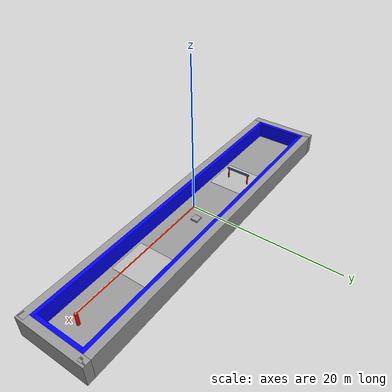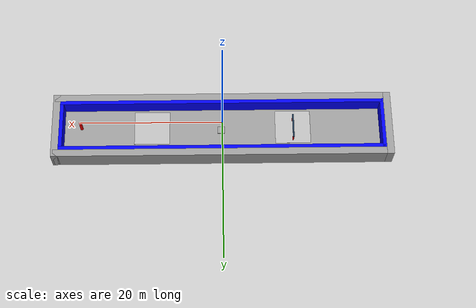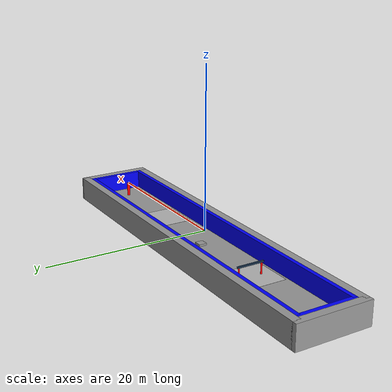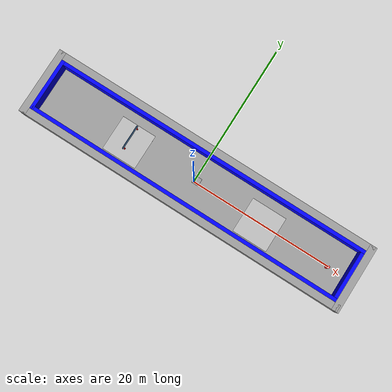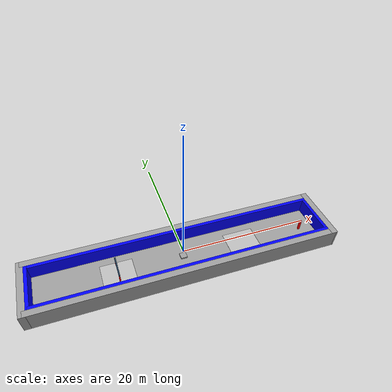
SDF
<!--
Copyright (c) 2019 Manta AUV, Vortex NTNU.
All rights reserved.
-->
<sdf version="1.5">
 <world name="empty_underwater">
  <physics name="default_physics" default="true" type="ode">
   <max_step_size>0.002</max_step_size>
   <real_time_factor>1</real_time_factor>
   <real_time_update_rate>500</real_time_update_rate>
   <ode><solver><type>quick</type><iters>50</iters><sor>0.5</sor></solver></ode>
  </physics>
  <scene>
   <ambient>0.01 0.01 0.01 1.0</ambient>
   <sky><clouds><speed>12</speed></clouds></sky>
   <shadows>1</shadows>
   <fog>
    <color>0.1 0.2 0.3 1.0</color>
    <type>linear</type>
    <density>0.001</density>
    <start>10</start>
    <end>200</end>
   </fog>
  </scene>
  <spherical_coordinates>
   <latitude_deg>56.71897669633431</latitude_deg>
   <longitude_deg>3.515625</longitude_deg>
  </spherical_coordinates>
  <include><uri>model://sun</uri></include>
  <include><name>pool</name><pose>0 0 -2 0 0 0</pose><uri>model://2018/Pool</uri></include>
  <include><name>pole</name><pose>20 0 -2.5 0 0 0</pose><uri>model://2018/Pole</uri></include>
  <include><name>test_gate</name><pose>-10 0 -2 0 0 0</pose><uri>model://2018/test_gate</uri></include>
  <include><name>vortex_logo_1</name><pose>-10 0 -2.79 0 0 0</pose><uri>model://2018/vortex_logo</uri></include>
  <include><name>vortex_logo_2</name><pose>10 0 -2.79 0 0 0</pose><uri>model://2018/vortex_logo</uri></include>
  <light type="directional" name="sun0">
   <pose>8 -21 10 0 0.8 -2.8</pose>
   <diffuse>0.8 0.8 0.8 1</diffuse>
   <specular>0.2 0.2 0.2 1</specular>
   <attenuation>
    <range>1000</range>
    <constant>0.9</constant>
    <linear>0.01</linear>
    <quadratic>0.001</quadratic>
   </attenuation>
   <direction>-0.5 0.1 -0.9</direction>
  </light>
  <light type="directional" name="sun1">
   <pose>8 -20 10 0 0.8 0</pose>
   <diffuse>0.8 0.8 0.8 1</diffuse>
   <specular>0.2 0.2 0.2 1</specular>
   <attenuation>
    <range>1000</range>
    <constant>0.9</constant>
    <linear>0.01</linear>
    <quadratic>0.001</quadratic>
   </attenuation>
   <direction>-0.5 0.1 -0.9</direction>
  </light>
  <light type="directional" name="sun2">
   <pose>8 -19 10 0 0 0</pose>
   <diffuse>0.8 0.8 0.8 1</diffuse>
   <specular>0.2 0.2 0.2 1</specular>
   <attenuation>
    <range>1000</range>
    <constant>0.9</constant>
    <linear>0.01</linear>
    <quadratic>0.001</quadratic>
   </attenuation>
   <direction>-0.5 0.1 -0.9</direction>
  </light>
  <light type="directional" name="sun3">
   <pose>8 -19 10 1.75 0 0</pose>
   <diffuse>0.8 0.8 0.8 1</diffuse>
   <specular>0.2 0.2 0.2 1</specular>
   <attenuation>
    <range>1000</range>
    <constant>0.9</constant>
    <linear>0.01</linear>
    <quadratic>0.001</quadratic>
   </attenuation>
   <direction>-0.5 0.1 -0.9</direction>
  </light>
  <light type="directional" name="sun4">
   <pose>8 -19 10 1.75 0 2.9</pose>
   <diffuse>0.8 0.8 0.8 1</diffuse>
   <specular>0.2 0.2 0.2 1</specular>
   <attenuation>
    <range>1000</range>
    <constant>0.9</constant>
    <linear>0.01</linear>
    <quadratic>0.001</quadratic>
   </attenuation>
   <direction>-0.5 0.1 -0.9</direction>
  </light>
  <plugin name="underwater_current_plugin" filename="libuuv_underwater_current_ros_plugin.so">
   <namespace>hydrodynamics</namespace>
   <constant_current>
    <topic>current_velocity</topic>
    <velocity><mean>0</mean><min>0</min><max>5</max><mu>0.0</mu><noiseAmp>0.0</noiseAmp></velocity>
    <horizontal_angle>
     <mean>0</mean>
     <min>-3.141592653589793238</min>
     <max>3.141592653589793238</max>
     <mu>0.0</mu>
     <noiseAmp>0.0</noiseAmp>
    </horizontal_angle>
    <vertical_angle>
     <mean>0</mean>
     <min>-3.141592653589793238</min>
     <max>3.141592653589793238</max>
     <mu>0.0</mu>
     <noiseAmp>0.0</noiseAmp>
    </vertical_angle>
   </constant_current>
  </plugin>
  <plugin name="sc_interface" filename="libuuv_sc_ros_interface_plugin.so"/>
 </world>
</sdf>

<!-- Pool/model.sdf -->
<sdf version='1.6'>
  <model name='Pool'>
    <link name='link_0'>
      <pose frame=''>0.166667 0.472222 0 0 -0 0</pose>
      <inertial>
        <mass>1</mass>
        <inertia>
          <ixx>0.166667</ixx>
          <ixy>0</ixy>
          <ixz>0</ixz>
          <iyy>0.166667</iyy>
          <iyz>0</iyz>
          <izz>0.166667</izz>
        </inertia>
        <pose frame=''>0 0 0 0 -0 0</pose>
      </inertial>
      <self_collide>0</self_collide>
      <kinematic>0</kinematic>
      <gravity>1</gravity>
      <visual name='visual'>
        <pose frame=''>0 0 0 0 -0 0</pose>
        <geometry>
          <box>
            <size>45 6.5 0.5</size>
          </box>
        </geometry>
        <material>
          <lighting>1</lighting>
          <script>
            <uri>file://media/materials/scripts/gazebo.material</uri>
            <name>Gazebo/Grey</name>
          </script>
          <ambient>0.3 0.3 0.3 1</ambient>
          <diffuse>0.7 0.7 0.7 1</diffuse>
          <specular>0.01 0.01 0.01 1</specular>
          <emissive>0 0 0 1</emissive>
          <shader type='vertex'>
            <normal_map>__default__</normal_map>
          </shader>
        </material>
        <cast_shadows>1</cast_shadows>
        <transparency>0</transparency>
      </visual>
      <visual name='ModelPreview_0::link_0::visual_1'>
        <pose frame=''>0 0 0 0 -0 0</pose>
        <geometry>
          <box>
            <size>1 1 1</size>
          </box>
        </geometry>
        <material>
          <lighting>1</lighting>
          <script>
            <uri>file://media/materials/scripts/gazebo.material</uri>
            <name>Gazebo/Grey</name>
          </script>
          <ambient>0.7 0.7 0.7 1</ambient>
          <diffuse>0.7 0.7 0.7 1</diffuse>
          <specular>0.7 0.7 0.7 1</specular>
          <emissive>0.7 0.7 0.7 1</emissive>
          <shader type='vertex'>
            <normal_map>__default__</normal_map>
          </shader>
        </material>
        <cast_shadows>1</cast_shadows>
        <transparency>0</transparency>
      </visual>
      <visual name='ModelPreview_0::link_0::visual_2'>
        <pose frame=''>0 0 0 0 -0 0</pose>
        <geometry>
          <box>
            <size>45 6.5 0.5</size>
          </box>
        </geometry>
        <material>
          <lighting>1</lighting>
          <script>
            <uri>file://media/materials/scripts/gazebo.material</uri>
            <name>Gazebo/Grey</name>
          </script>
          <ambient>0.7 0.7 0.7 1</ambient>
          <diffuse>0.7 0.7 0.7 1</diffuse>
          <specular>0.7 0.7 0.7 1</specular>
          <emissive>0.7 0.7 0.7 1</emissive>
          <shader type='pixel'>
            <normal_map>__default__</normal_map>
          </shader>
        </material>
        <cast_shadows>1</cast_shadows>
        <transparency>0</transparency>
      </visual>
      <collision name='collision'>
        <laser_retro>0</laser_retro>
        <max_contacts>10</max_contacts>
        <pose frame=''>0 0 0 0 -0 0</pose>
        <geometry>
          <box>
            <size>45 6.5 0.5</size>
          </box>
        </geometry>
        <surface>
          <friction>
            <ode>
              <mu>1</mu>
              <mu2>1</mu2>
              <fdir1>0 0 0</fdir1>
              <slip1>0</slip1>
              <slip2>0</slip2>
            </ode>
            <torsional>
              <coefficient>1</coefficient>
              <patch_radius>0</patch_radius>
              <surface_radius>0</surface_radius>
              <use_patch_radius>1</use_patch_radius>
              <ode>
                <slip>0</slip>
              </ode>
            </torsional>
          </friction>
          <bounce>
            <restitution_coefficient>0</restitution_coefficient>
            <threshold>1e+06</threshold>
          </bounce>
          <contact>
            <collide_without_contact>0</collide_without_contact>
            <collide_without_contact_bitmask>1</collide_without_contact_bitmask>
            <collide_bitmask>1</collide_bitmask>
            <ode>
              <soft_cfm>0</soft_cfm>
              <soft_erp>0.2</soft_erp>
              <kp>1e+13</kp>
              <kd>1</kd>
              <max_vel>0.01</max_vel>
              <min_depth>0</min_depth>
            </ode>
            <bullet>
              <split_impulse>1</split_impulse>
              <split_impulse_penetration_threshold>-0.01</split_impulse_penetration_threshold>
              <soft_cfm>0</soft_cfm>
              <soft_erp>0.2</soft_erp>
              <kp>1e+13</kp>
              <kd>1</kd>
            </bullet>
          </contact>
        </surface>
      </collision>
    </link>
    <link name='link_1'>
      <pose frame=''>22.6667 -2.77778 0 0 -0 0</pose>
      <inertial>
        <mass>1</mass>
        <inertia>
          <ixx>0.166667</ixx>
          <ixy>0</ixy>
          <ixz>0</ixz>
          <iyy>0.166667</iyy>
          <iyz>0</iyz>
          <izz>0.166667</izz>
        </inertia>
        <pose frame=''>0 0 0 0 -0 0</pose>
      </inertial>
      <self_collide>0</self_collide>
      <kinematic>0</kinematic>
      <visual name='visual'>
        <pose frame=''>0 3.25 1 0 -0 0</pose>
        <geometry>
          <box>
            <size>0.5 6.5 3</size>
          </box>
        </geometry>
        <material>
          <lighting>1</lighting>
          <script>
            <uri>file://media/materials/scripts/gazebo.material</uri>
            <name>Gazebo/Grey</name>
          </script>
          <ambient>0 0 1 1</ambient>
          <diffuse>0 0 1 1</diffuse>
          <specular>0 0 1 1</specular>
          <emissive>0 0 1 1</emissive>
          <shader type='vertex'>
            <normal_map>__default__</normal_map>
          </shader>
        </material>
        <cast_shadows>1</cast_shadows>
        <transparency>0</transparency>
      </visual>
      <collision name='collision'>
        <laser_retro>0</laser_retro>
        <max_contacts>10</max_contacts>
        <pose frame=''>0 3.25 1 0 -0 0</pose>
        <geometry>
          <box>
            <size>0.5 6.5 3</size>
          </box>
        </geometry>
        <surface>
          <friction>
            <ode>
              <mu>1</mu>
              <mu2>1</mu2>
              <fdir1>0 0 0</fdir1>
              <slip1>0</slip1>
              <slip2>0</slip2>
            </ode>
            <torsional>
              <coefficient>1</coefficient>
              <patch_radius>0</patch_radius>
              <surface_radius>0</surface_radius>
              <use_patch_radius>1</use_patch_radius>
              <ode>
                <slip>0</slip>
              </ode>
            </torsional>
          </friction>
          <bounce>
            <restitution_coefficient>0</restitution_coefficient>
            <threshold>1e+06</threshold>
          </bounce>
          <contact>
            <collide_without_contact>0</collide_without_contact>
            <collide_without_contact_bitmask>1</collide_without_contact_bitmask>
            <collide_bitmask>1</collide_bitmask>
            <ode>
              <soft_cfm>0</soft_cfm>
              <soft_erp>0.2</soft_erp>
              <kp>1e+13</kp>
              <kd>1</kd>
              <max_vel>0.01</max_vel>
              <min_depth>0</min_depth>
            </ode>
            <bullet>
              <split_impulse>1</split_impulse>
              <split_impulse_penetration_threshold>-0.01</split_impulse_penetration_threshold>
              <soft_cfm>0</soft_cfm>
              <soft_erp>0.2</soft_erp>
              <kp>1e+13</kp>
              <kd>1</kd>
            </bullet>
          </contact>
        </surface>
      </collision>
    </link>
    <link name='link_10'>
      <pose frame=''>0.166667 5.47222 0 0 -0 0</pose>
      <inertial>
        <mass>1</mass>
        <inertia>
          <ixx>0.166667</ixx>
          <ixy>0</ixy>
          <ixz>0</ixz>
          <iyy>0.166667</iyy>
          <iyz>0</iyz>
          <izz>0.166667</izz>
        </inertia>
        <pose frame=''>0 0 0 0 -0 0</pose>
      </inertial>
      <self_collide>0</self_collide>
      <kinematic>0</kinematic>
      <visual name='visual'>
        <pose frame=''>0 -0.75 1 0 -0 0</pose>
        <geometry>
          <box>
            <size>47 1 3</size>
          </box>
        </geometry>
        <material>
          <lighting>1</lighting>
          <script>
            <uri>file://media/materials/scripts/gazebo.material</uri>
            <name>Gazebo/Grey</name>
          </script>
          <ambient>0.3 0.3 0.3 1</ambient>
          <diffuse>0.7 0.7 0.7 1</diffuse>
          <specular>0.01 0.01 0.01 1</specular>
          <emissive>0 0 0 1</emissive>
          <shader type='vertex'>
            <normal_map>__default__</normal_map>
          </shader>
        </material>
        <cast_shadows>1</cast_shadows>
        <transparency>0</transparency>
      </visual>
      <collision name='collision'>
        <laser_retro>0</laser_retro>
        <max_contacts>10</max_contacts>
        <pose frame=''>0 -0.75 1 0 -0 0</pose>
        <geometry>
          <box>
            <size>47 1 3</size>
          </box>
        </geometry>
        <surface>
          <friction>
            <ode>
              <mu>1</mu>
              <mu2>1</mu2>
              <fdir1>0 0 0</fdir1>
              <slip1>0</slip1>
              <slip2>0</slip2>
            </ode>
            <torsional>
              <coefficient>1</coefficient>
              <patch_radius>0</patch_radius>
              <surface_radius>0</surface_radius>
              <use_patch_radius>1</use_patch_radius>
              <ode>
                <slip>0</slip>
              </ode>
            </torsional>
          </friction>
          <bounce>
            <restitution_coefficient>0</restitution_coefficient>
            <threshold>1e+06</threshold>
          </bounce>
          <contact>
            <collide_without_contact>0</collide_without_contact>
            <collide_without_contact_bitmask>1</collide_without_contact_bitmask>
            <collide_bitmask>1</collide_bitmask>
            <ode>
              <soft_cfm>0</soft_cfm>
              <soft_erp>0.2</soft_erp>
              <kp>1e+13</kp>
              <kd>1</kd>
              <max_vel>0.01</max_vel>
              <min_depth>0</min_depth>
            </ode>
            <bullet>
              <split_impulse>1</split_impulse>
              <split_impulse_penetration_threshold>-0.01</split_impulse_penetration_threshold>
              <soft_cfm>0</soft_cfm>
              <soft_erp>0.2</soft_erp>
              <kp>1e+13</kp>
              <kd>1</kd>
            </bullet>
          </contact>
        </surface>
      </collision>
    </link>
    <link name='link_13'>
      <pose frame=''>0.166667 -4.52778 0 0 -0 0</pose>
      <inertial>
        <mass>1</mass>
        <inertia>
          <ixx>0.166667</ixx>
          <ixy>0</ixy>
          <ixz>0</ixz>
          <iyy>0.166667</iyy>
          <iyz>0</iyz>
          <izz>0.166667</izz>
        </inertia>
        <pose frame=''>0 0 0 0 -0 0</pose>
      </inertial>
      <self_collide>0</self_collide>
      <kinematic>0</kinematic>
      <visual name='visual'>
        <pose frame=''>0 0.75 1 0 -0 0</pose>
        <geometry>
          <box>
            <size>47 1 3</size>
          </box>
        </geometry>
        <material>
          <lighting>1</lighting>
          <script>
            <uri>file://media/materials/scripts/gazebo.material</uri>
            <name>Gazebo/Grey</name>
          </script>
          <ambient>0.3 0.3 0.3 1</ambient>
          <diffuse>0.7 0.7 0.7 1</diffuse>
          <specular>0.01 0.01 0.01 1</specular>
          <emissive>0 0 0 1</emissive>
          <shader type='vertex'>
            <normal_map>__default__</normal_map>
          </shader>
        </material>
        <cast_shadows>1</cast_shadows>
        <transparency>0</transparency>
      </visual>
      <collision name='collision'>
        <laser_retro>0</laser_retro>
        <max_contacts>10</max_contacts>
        <pose frame=''>0 0.75 1 0 -0 0</pose>
        <geometry>
          <box>
            <size>47 1 3</size>
          </box>
        </geometry>
        <surface>
          <friction>
            <ode>
              <mu>1</mu>
              <mu2>1</mu2>
              <fdir1>0 0 0</fdir1>
              <slip1>0</slip1>
              <slip2>0</slip2>
            </ode>
            <torsional>
              <coefficient>1</coefficient>
              <patch_radius>0</patch_radius>
              <surface_radius>0</surface_radius>
              <use_patch_radius>1</use_patch_radius>
              <ode>
                <slip>0</slip>
              </ode>
            </torsional>
          </friction>
          <bounce>
            <restitution_coefficient>0</restitution_coefficient>
            <threshold>1e+06</threshold>
          </bounce>
          <contact>
            <collide_without_contact>0</collide_without_contact>
            <collide_without_contact_bitmask>1</collide_without_contact_bitmask>
            <collide_bitmask>1</collide_bitmask>
            <ode>
              <soft_cfm>0</soft_cfm>
              <soft_erp>0.2</soft_erp>
              <kp>1e+13</kp>
              <kd>1</kd>
              <max_vel>0.01</max_vel>
              <min_depth>0</min_depth>
            </ode>
            <bullet>
              <split_impulse>1</split_impulse>
              <split_impulse_penetration_threshold>-0.01</split_impulse_penetration_threshold>
              <soft_cfm>0</soft_cfm>
              <soft_erp>0.2</soft_erp>
              <kp>1e+13</kp>
              <kd>1</kd>
            </bullet>
          </contact>
        </surface>
      </collision>
    </link>
    <link name='link_3'>
      <pose frame=''>0.166667 3.47222 0 0 -0 0</pose>
      <inertial>
        <mass>1</mass>
        <inertia>
          <ixx>0.166667</ixx>
          <ixy>0</ixy>
          <ixz>0</ixz>
          <iyy>0.166667</iyy>
          <iyz>0</iyz>
          <izz>0.166667</izz>
        </inertia>
        <pose frame=''>0 0 0 0 -0 0</pose>
      </inertial>
      <self_collide>0</self_collide>
      <kinematic>0</kinematic>
      <visual name='visual'>
        <pose frame=''>0 0.5 1 0 -0 0</pose>
        <geometry>
          <box>
            <size>45.5 0.5 3</size>
          </box>
        </geometry>
        <material>
          <lighting>1</lighting>
          <script>
            <uri>file://media/materials/scripts/gazebo.material</uri>
            <name>Gazebo/Grey</name>
          </script>
          <ambient>0 0 1 1</ambient>
          <diffuse>0 0 1 1</diffuse>
          <specular>0 0 1 1</specular>
          <emissive>0 0 1 1</emissive>
          <shader type='vertex'>
            <normal_map>__default__</normal_map>
          </shader>
        </material>
        <cast_shadows>1</cast_shadows>
        <transparency>0</transparency>
      </visual>
      <collision name='collision'>
        <laser_retro>0</laser_retro>
        <max_contacts>10</max_contacts>
        <pose frame=''>0 0.5 1 0 -0 0</pose>
        <geometry>
          <box>
            <size>45.5 0.5 3</size>
          </box>
        </geometry>
        <surface>
          <friction>
            <ode>
              <mu>1</mu>
              <mu2>1</mu2>
              <fdir1>0 0 0</fdir1>
              <slip1>0</slip1>
              <slip2>0</slip2>
            </ode>
            <torsional>
              <coefficient>1</coefficient>
              <patch_radius>0</patch_radius>
              <surface_radius>0</surface_radius>
              <use_patch_radius>1</use_patch_radius>
              <ode>
                <slip>0</slip>
              </ode>
            </torsional>
          </friction>
          <bounce>
            <restitution_coefficient>0</restitution_coefficient>
            <threshold>1e+06</threshold>
          </bounce>
          <contact>
            <collide_without_contact>0</collide_without_contact>
            <collide_without_contact_bitmask>1</collide_without_contact_bitmask>
            <collide_bitmask>1</collide_bitmask>
            <ode>
              <soft_cfm>0</soft_cfm>
              <soft_erp>0.2</soft_erp>
              <kp>1e+13</kp>
              <kd>1</kd>
              <max_vel>0.01</max_vel>
              <min_depth>0</min_depth>
            </ode>
            <bullet>
              <split_impulse>1</split_impulse>
              <split_impulse_penetration_threshold>-0.01</split_impulse_penetration_threshold>
              <soft_cfm>0</soft_cfm>
              <soft_erp>0.2</soft_erp>
              <kp>1e+13</kp>
              <kd>1</kd>
            </bullet>
          </contact>
        </surface>
      </collision>
    </link>
    <link name='link_4'>
      <pose frame=''>-22.8333 0.472222 0 0 -0 0</pose>
      <inertial>
        <mass>1</mass>
        <inertia>
          <ixx>0.166667</ixx>
          <ixy>0</ixy>
          <ixz>0</ixz>
          <iyy>0.166667</iyy>
          <iyz>0</iyz>
          <izz>0.166667</izz>
        </inertia>
        <pose frame=''>0 0 0 0 -0 0</pose>
      </inertial>
      <self_collide>0</self_collide>
      <kinematic>0</kinematic>
      <visual name='visual'>
        <pose frame=''>0.25 0 1 0 -0 0</pose>
        <geometry>
          <box>
            <size>0.5 7.5 3</size>
          </box>
        </geometry>
        <material>
          <lighting>1</lighting>
          <script>
            <uri>file://media/materials/scripts/gazebo.material</uri>
            <name>Gazebo/Grey</name>
          </script>
          <ambient>0 0 1 1</ambient>
          <diffuse>0 0 1 1</diffuse>
          <specular>0 0 1 1</specular>
          <emissive>0 0 0 1</emissive>
          <shader type='vertex'>
            <normal_map>__default__</normal_map>
          </shader>
        </material>
        <cast_shadows>1</cast_shadows>
        <transparency>0</transparency>
      </visual>
      <collision name='collision'>
        <laser_retro>0</laser_retro>
        <max_contacts>10</max_contacts>
        <pose frame=''>0.25 0 1 0 -0 0</pose>
        <geometry>
          <box>
            <size>0.5 7.5 3</size>
          </box>
        </geometry>
        <surface>
          <friction>
            <ode>
              <mu>1</mu>
              <mu2>1</mu2>
              <fdir1>0 0 0</fdir1>
              <slip1>0</slip1>
              <slip2>0</slip2>
            </ode>
            <torsional>
              <coefficient>1</coefficient>
              <patch_radius>0</patch_radius>
              <surface_radius>0</surface_radius>
              <use_patch_radius>1</use_patch_radius>
              <ode>
                <slip>0</slip>
              </ode>
            </torsional>
          </friction>
          <bounce>
            <restitution_coefficient>0</restitution_coefficient>
            <threshold>1e+06</threshold>
          </bounce>
          <contact>
            <collide_without_contact>0</collide_without_contact>
            <collide_without_contact_bitmask>1</collide_without_contact_bitmask>
            <collide_bitmask>1</collide_bitmask>
            <ode>
              <soft_cfm>0</soft_cfm>
              <soft_erp>0.2</soft_erp>
              <kp>1e+13</kp>
              <kd>1</kd>
              <max_vel>0.01</max_vel>
              <min_depth>0</min_depth>
            </ode>
            <bullet>
              <split_impulse>1</split_impulse>
              <split_impulse_penetration_threshold>-0.01</split_impulse_penetration_threshold>
              <soft_cfm>0</soft_cfm>
              <soft_erp>0.2</soft_erp>
              <kp>1e+13</kp>
              <kd>1</kd>
            </bullet>
          </contact>
        </surface>
      </collision>
    </link>
    <link name='link_6'>
      <pose frame=''>0.166667 -3.52778 0 0 -0 0</pose>
      <inertial>
        <mass>1</mass>
        <inertia>
          <ixx>0.166667</ixx>
          <ixy>0</ixy>
          <ixz>0</ixz>
          <iyy>0.166667</iyy>
          <iyz>0</iyz>
          <izz>0.166667</izz>
        </inertia>
        <pose frame=''>0 0 0 0 -0 0</pose>
      </inertial>
      <self_collide>0</self_collide>
      <kinematic>0</kinematic>
      <visual name='visual'>
        <pose frame=''>0 0.5 1 0 -0 0</pose>
        <geometry>
          <box>
            <size>45.5 0.5 3</size>
          </box>
        </geometry>
        <material>
          <lighting>1</lighting>
          <script>
            <uri>file://media/materials/scripts/gazebo.material</uri>
            <name>Gazebo/Grey</name>
          </script>
          <ambient>0 0 1 1</ambient>
          <diffuse>0 0 1 1</diffuse>
          <specular>0 0 1 1</specular>
          <emissive>0 0 1 1</emissive>
          <shader type='vertex'>
            <normal_map>__default__</normal_map>
          </shader>
        </material>
        <cast_shadows>1</cast_shadows>
        <transparency>0</transparency>
      </visual>
      <collision name='collision'>
        <laser_retro>0</laser_retro>
        <max_contacts>10</max_contacts>
        <pose frame=''>0 0.5 1 0 -0 0</pose>
        <geometry>
          <box>
            <size>45.5 0.5 3</size>
          </box>
        </geometry>
        <surface>
          <friction>
            <ode>
              <mu>1</mu>
              <mu2>1</mu2>
              <fdir1>0 0 0</fdir1>
              <slip1>0</slip1>
              <slip2>0</slip2>
            </ode>
            <torsional>
              <coefficient>1</coefficient>
              <patch_radius>0</patch_radius>
              <surface_radius>0</surface_radius>
              <use_patch_radius>1</use_patch_radius>
              <ode>
                <slip>0</slip>
              </ode>
            </torsional>
          </friction>
          <bounce>
            <restitution_coefficient>0</restitution_coefficient>
            <threshold>1e+06</threshold>
          </bounce>
          <contact>
            <collide_without_contact>0</collide_without_contact>
            <collide_without_contact_bitmask>1</collide_without_contact_bitmask>
            <collide_bitmask>1</collide_bitmask>
            <ode>
              <soft_cfm>0</soft_cfm>
              <soft_erp>0.2</soft_erp>
              <kp>1e+13</kp>
              <kd>1</kd>
              <max_vel>0.01</max_vel>
              <min_depth>0</min_depth>
            </ode>
            <bullet>
              <split_impulse>1</split_impulse>
              <split_impulse_penetration_threshold>-0.01</split_impulse_penetration_threshold>
              <soft_cfm>0</soft_cfm>
              <soft_erp>0.2</soft_erp>
              <kp>1e+13</kp>
              <kd>1</kd>
            </bullet>
          </contact>
        </surface>
      </collision>
    </link>
    <link name='link_7'>
      <pose frame=''>-23.8333 0.472222 0 0 -0 0</pose>
      <inertial>
        <mass>1</mass>
        <inertia>
          <ixx>0.166667</ixx>
          <ixy>0</ixy>
          <ixz>0</ixz>
          <iyy>0.166667</iyy>
          <iyz>0</iyz>
          <izz>0.166667</izz>
        </inertia>
        <pose frame=''>0 0 0 0 -0 0</pose>
      </inertial>
      <self_collide>0</self_collide>
      <kinematic>0</kinematic>
      <visual name='visual'>
        <pose frame=''>0.5 0 1 0 -0 0</pose>
        <geometry>
          <box>
            <size>1 9.5 3</size>
          </box>
        </geometry>
        <material>
          <lighting>1</lighting>
          <script>
            <uri>file://media/materials/scripts/gazebo.material</uri>
            <name>Gazebo/Grey</name>
          </script>
          <ambient>0.3 0.3 0.3 1</ambient>
          <diffuse>0.7 0.7 0.7 1</diffuse>
          <specular>0.01 0.01 0.01 1</specular>
          <emissive>0 0 0 1</emissive>
          <shader type='vertex'>
            <normal_map>__default__</normal_map>
          </shader>
        </material>
        <cast_shadows>1</cast_shadows>
        <transparency>0</transparency>
      </visual>
      <collision name='collision'>
        <laser_retro>0</laser_retro>
        <max_contacts>10</max_contacts>
        <pose frame=''>0.5 0 1 0 -0 0</pose>
        <geometry>
          <box>
            <size>1 9.5 3</size>
          </box>
        </geometry>
        <surface>
          <friction>
            <ode>
              <mu>1</mu>
              <mu2>1</mu2>
              <fdir1>0 0 0</fdir1>
              <slip1>0</slip1>
              <slip2>0</slip2>
            </ode>
            <torsional>
              <coefficient>1</coefficient>
              <patch_radius>0</patch_radius>
              <surface_radius>0</surface_radius>
              <use_patch_radius>1</use_patch_radius>
              <ode>
                <slip>0</slip>
              </ode>
            </torsional>
          </friction>
          <bounce>
            <restitution_coefficient>0</restitution_coefficient>
            <threshold>1e+06</threshold>
          </bounce>
          <contact>
            <collide_without_contact>0</collide_without_contact>
            <collide_without_contact_bitmask>1</collide_without_contact_bitmask>
            <collide_bitmask>1</collide_bitmask>
            <ode>
              <soft_cfm>0</soft_cfm>
              <soft_erp>0.2</soft_erp>
              <kp>1e+13</kp>
              <kd>1</kd>
              <max_vel>0.01</max_vel>
              <min_depth>0</min_depth>
            </ode>
            <bullet>
              <split_impulse>1</split_impulse>
              <split_impulse_penetration_threshold>-0.01</split_impulse_penetration_threshold>
              <soft_cfm>0</soft_cfm>
              <soft_erp>0.2</soft_erp>
              <kp>1e+13</kp>
              <kd>1</kd>
            </bullet>
          </contact>
        </surface>
      </collision>
    </link>
    <link name='link_8'>
      <pose frame=''>23.1667 0.472222 0 0 -0 0</pose>
      <inertial>
        <mass>1</mass>
        <inertia>
          <ixx>0.166667</ixx>
          <ixy>0</ixy>
          <ixz>0</ixz>
          <iyy>0.166667</iyy>
          <iyz>0</iyz>
          <izz>0.166667</izz>
        </inertia>
        <pose frame=''>0.25 0 0 0 -0 0</pose>
      </inertial>
      <self_collide>0</self_collide>
      <kinematic>0</kinematic>
      <visual name='visual'>
        <pose frame=''>0.25 0 1 0 -0 0</pose>
        <geometry>
          <box>
            <size>1 9.5 3</size>
          </box>
        </geometry>
        <material>
          <lighting>1</lighting>
          <script>
            <uri>file://media/materials/scripts/gazebo.material</uri>
            <name>Gazebo/Grey</name>
          </script>
          <ambient>0.3 0.3 0.3 1</ambient>
          <diffuse>0.7 0.7 0.7 1</diffuse>
          <specular>0.01 0.01 0.01 1</specular>
          <emissive>0 0 0 1</emissive>
          <shader type='vertex'>
            <normal_map>__default__</normal_map>
          </shader>
        </material>
        <cast_shadows>1</cast_shadows>
        <transparency>0</transparency>
      </visual>
      <collision name='collision'>
        <laser_retro>0</laser_retro>
        <max_contacts>10</max_contacts>
        <pose frame=''>0.25 0 1 0 -0 0</pose>
        <geometry>
          <box>
            <size>1 9.5 3</size>
          </box>
        </geometry>
        <surface>
          <friction>
            <ode>
              <mu>1</mu>
              <mu2>1</mu2>
              <fdir1>0 0 0</fdir1>
              <slip1>0</slip1>
              <slip2>0</slip2>
            </ode>
            <torsional>
              <coefficient>1</coefficient>
              <patch_radius>0</patch_radius>
              <surface_radius>0</surface_radius>
              <use_patch_radius>1</use_patch_radius>
              <ode>
                <slip>0</slip>
              </ode>
            </torsional>
          </friction>
          <bounce>
            <restitution_coefficient>0</restitution_coefficient>
            <threshold>1e+06</threshold>
          </bounce>
          <contact>
            <collide_without_contact>0</collide_without_contact>
            <collide_without_contact_bitmask>1</collide_without_contact_bitmask>
            <collide_bitmask>1</collide_bitmask>
            <ode>
              <soft_cfm>0</soft_cfm>
              <soft_erp>0.2</soft_erp>
              <kp>1e+13</kp>
              <kd>1</kd>
              <max_vel>0.01</max_vel>
              <min_depth>0</min_depth>
            </ode>
            <bullet>
              <split_impulse>1</split_impulse>
              <split_impulse_penetration_threshold>-0.01</split_impulse_penetration_threshold>
              <soft_cfm>0</soft_cfm>
              <soft_erp>0.2</soft_erp>
              <kp>1e+13</kp>
              <kd>1</kd>
            </bullet>
          </contact>
        </surface>
      </collision>
    </link>
    <joint name='link_0_JOINT_0' type='fixed'>
      <parent>link_0</parent>
      <child>link_1</child>
      <pose frame=''>0 0 0 0 -0 0</pose>
      <physics>
        <ode>
          <limit>
            <cfm>0</cfm>
            <erp>0.2</erp>
          </limit>
          <suspension>
            <cfm>0</cfm>
            <erp>0.2</erp>
          </suspension>
        </ode>
      </physics>
    </joint>
    <joint name='link_0_JOINT_1' type='fixed'>
      <parent>link_0</parent>
      <child>link_3</child>
      <pose frame=''>0 0 0 0 -0 0</pose>
      <physics>
        <ode>
          <limit>
            <cfm>0</cfm>
            <erp>0.2</erp>
          </limit>
          <suspension>
            <cfm>0</cfm>
            <erp>0.2</erp>
          </suspension>
        </ode>
      </physics>
    </joint>
    <joint name='link_0_JOINT_2' type='fixed'>
      <parent>link_0</parent>
      <child>link_4</child>
      <pose frame=''>0 0 0 0 -0 0</pose>
      <physics>
        <ode>
          <limit>
            <cfm>0</cfm>
            <erp>0.2</erp>
          </limit>
          <suspension>
            <cfm>0</cfm>
            <erp>0.2</erp>
          </suspension>
        </ode>
      </physics>
    </joint>
    <joint name='link_7_JOINT_3' type='fixed'>
      <parent>link_7</parent>
      <child>link_4</child>
      <pose frame=''>0 0 0 0 -0 0</pose>
      <physics>
        <ode>
          <limit>
            <cfm>0</cfm>
            <erp>0.2</erp>
          </limit>
          <suspension>
            <cfm>0</cfm>
            <erp>0.2</erp>
          </suspension>
        </ode>
      </physics>
    </joint>
    <static>1</static>
  </model>
</sdf>

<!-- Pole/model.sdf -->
<sdf version='1.6'>
  <model name='Pole'>
    <link name='link_14'>
      <pose frame=''>-0 0 0 0 -0 0</pose>
      <visual name='visual'>
        <pose frame=''>0 0 1.5 0 -0 0</pose>
        <geometry>
          <cylinder>
            <radius>0.2</radius>
            <length>2</length>
          </cylinder>
        </geometry>
        <material>
          <lighting>1</lighting>
          <script>
            <uri>file://media/materials/scripts/gazebo.material</uri>
            <name>Gazebo/Grey</name>
          </script>
          <ambient>1 0 0 1</ambient>
          <diffuse>1 0 0 1</diffuse>
          <specular>1 0 0 1</specular>
          <emissive>1 0 0 1</emissive>
          <shader type='vertex'>
            <normal_map>__default__</normal_map>
          </shader>
        </material>
        <cast_shadows>1</cast_shadows>
        <transparency>0</transparency>
      </visual>
      <collision name='collision'>
        <laser_retro>0</laser_retro>
        <max_contacts>10</max_contacts>
        <pose frame=''>0 0 1.5 0 -0 0</pose>
        <geometry>
          <cylinder>
            <radius>0.2</radius>
            <length>2</length>
          </cylinder>
        </geometry>
      </collision>
    </link>
    <static>1</static>
  </model>
</sdf>

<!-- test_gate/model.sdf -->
<sdf version='1.6'>
  <model name='test_gate'>
    <link name='link_15'>
      <pose frame=''>0 -1 0 0 -0 0</pose>
      <visual name='visual'>
        <pose frame=''>0 0 1 0 -0 0</pose>
        <geometry>
          <cylinder>
            <radius>0.1</radius>
            <length>1.5</length>
          </cylinder>
        </geometry>
        <material>
          <lighting>1</lighting>
          <script>
            <uri>file://media/materials/scripts/gazebo.material</uri>
            <name>Gazebo/Grey</name>
          </script>
          <ambient>1 0 0 1</ambient>
          <diffuse>1 0 0 1</diffuse>
          <specular>1 0 0 1</specular>
          <emissive>0 0 0 1</emissive>
          <shader type='vertex'>
            <normal_map>__default__</normal_map>
          </shader>
        </material>
        <cast_shadows>1</cast_shadows>
        <transparency>0</transparency>
      </visual>
      <collision name='collision'>
        <laser_retro>0</laser_retro>
        <max_contacts>10</max_contacts>
        <pose frame=''>0 0 0 0 -0 0</pose>
        <geometry>
          <cylinder>
            <radius>0.1</radius>
            <length>1.5</length>
          </cylinder>
        </geometry>
      </collision>
    </link>
    <link name='link_16'>
      <pose frame=''>0 2 0 0 -0 0</pose>
      <visual name='visual'>
        <pose frame=''>0 0 1 0 -0 0</pose>
        <geometry>
          <cylinder>
            <radius>0.1</radius>
            <length>1.5</length>
          </cylinder>
        </geometry>
        <material>
          <lighting>1</lighting>
          <script>
            <uri>file://media/materials/scripts/gazebo.material</uri>
            <name>Gazebo/Grey</name>
          </script>
          <ambient>1 0 0 1</ambient>
          <diffuse>1 0 0 1</diffuse>
          <specular>1 0.01 0 1</specular>
          <emissive>0 0 0 1</emissive>
          <shader type='vertex'>
            <normal_map>__default__</normal_map>
          </shader>
        </material>
        <cast_shadows>1</cast_shadows>
        <transparency>0</transparency>
      </visual>
      <collision name='collision'>
        <laser_retro>0</laser_retro>
        <max_contacts>10</max_contacts>
        <pose frame=''>0 0 1 0 -0 0</pose>
        <geometry>
          <cylinder>
            <radius>0.1</radius>
            <length>1.5</length>
          </cylinder>
        </geometry>
      </collision>
    </link>
    <link name='link_17'>
      <pose frame=''>0 -1 0 0 -0 0</pose>
      <visual name='visual'>
        <pose frame=''>0 1.5 1.75 0 -0 0</pose>
        <geometry>
          <box>
            <size>0.2 3.5 0.2</size>
          </box>
        </geometry>
        <material>
          <lighting>1</lighting>
          <script>
            <uri>file://media/materials/scripts/gazebo.material</uri>
            <name>Gazebo/Grey</name>
          </script>
          <ambient>0.1 0.2 0.3 1</ambient>
          <diffuse>0.1 0.2 0.3 1</diffuse>
          <specular>0.1 0.2 0.3 1</specular>
          <emissive>0 0 0 1</emissive>
          <shader type='vertex'>
            <normal_map>__default__</normal_map>
          </shader>
        </material>
        <cast_shadows>1</cast_shadows>
        <transparency>0</transparency>
      </visual>
      <collision name='collision'>
        <laser_retro>0</laser_retro>
        <max_contacts>10</max_contacts>
        <pose frame=''>0 1.5 1.75 0 -0 0</pose>
        <geometry>
          <box>
            <size>0.2 3.5 0.2</size>
          </box>
        </geometry>
      </collision>
    </link>
    <joint name='link_16_JOINT_5' type='fixed'>
      <parent>link_17</parent>
      <child>link_16</child>
      <pose frame=''>0 0 0 0 -0 0</pose>
      <physics>
        <ode>
          <limit>
            <cfm>0</cfm>
            <erp>0.2</erp>
          </limit>
          <suspension>
            <cfm>0</cfm>
            <erp>0.2</erp>
          </suspension>
        </ode>
      </physics>
    </joint>
    <joint name='link_17_JOINT_6' type='fixed'>
      <parent>link_17</parent>
      <child>link_15</child>
      <pose frame=''>0 0 0 0 -0 0</pose>
      <physics>
        <ode>
          <limit>
            <cfm>0</cfm>
            <erp>0.2</erp>
          </limit>
          <suspension>
            <cfm>0</cfm>
            <erp>0.2</erp>
          </suspension>
        </ode>
      </physics>
    </joint>
    <static>1</static>
  </model>
</sdf>

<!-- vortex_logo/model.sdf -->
<sdf version='1.6'>
  <model name='vortex_logo'>
    <link name='link_18'>
      <pose frame=''>0 0 0 0 -0 0</pose>
      <visual name='visual'>
        <pose frame=''>0 0 1 0 -0 0</pose>
        <geometry>
          <box>
            <size>5 5 0.1</size>
          </box>
        </geometry>
        <material>
          <script>
            <uri>model://2018/vortex_logo/materials/scripts</uri>
            <uri>model://2018/vortex_logo/materials/textures</uri>
            <name>VortexLogo</name>
          </script>
        </material>
      </visual>
    </link>
    <static>1</static>
  </model>
</sdf>
